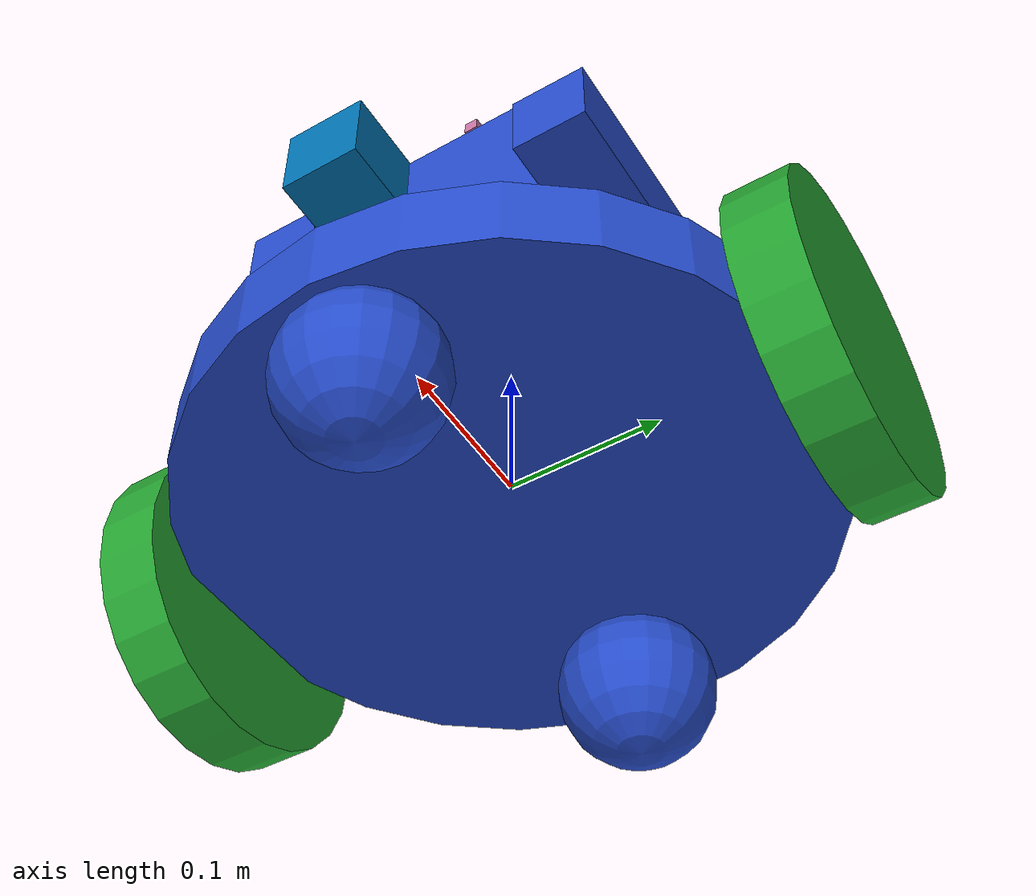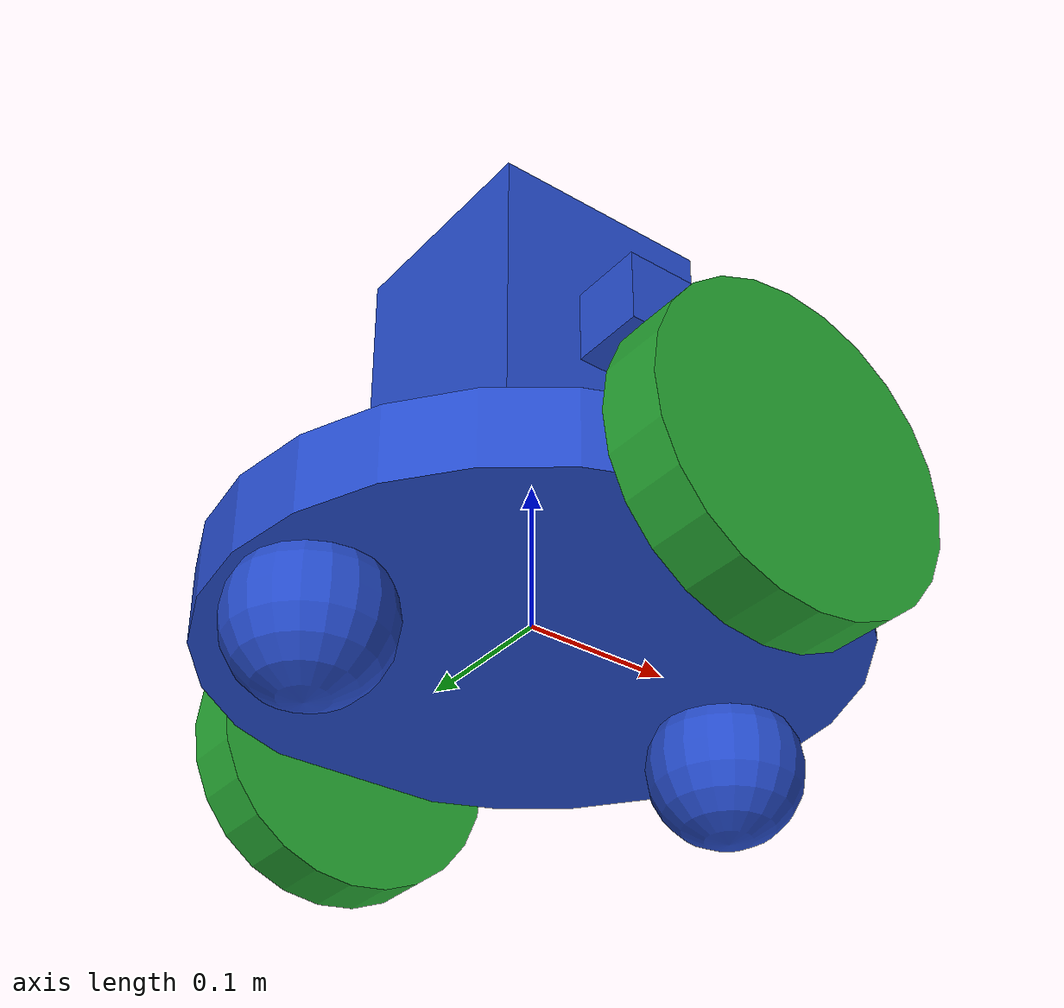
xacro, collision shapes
<?xml version='1.0'?>

<robot name="explo_bot" xmlns:xacro="http://www.ros.org/wiki/xacro">

  <xacro:include filename="$(find slam_project)/urdf/explo_bot.gazebo" />

  <link name="robot_footprint"></link>

  <joint name="robot_footprint_joint" type="fixed">
    <origin xyz="0 0 0" rpy="0 0 0" />
    <parent link="robot_footprint"/>
    <child link="chassis" />
  </joint>

  <link name='chassis'>
    <pose>0 0 0.1 0 0 0</pose>

    <inertial>
      <mass value="15.0"/>
      <origin xyz="0.0 0 0" rpy=" 0 0 0"/>
      <inertia
          ixx="0.1" ixy="0" ixz="0"
          iyy="0.1" iyz="0"
          izz="0.1"
      />
    </inertial>

    <collision name='collision'>
      <origin xyz="0 0 0" rpy=" 0 0 0"/>
      <geometry>
        <cylinder radius="0.2" length="0.05"/>
      </geometry>
    </collision>

    <visual name='chassis_visual'>
      <origin xyz="0 0 0" rpy=" 0 0 0"/>
      <geometry>
        <cylinder radius="0.2" length="0.1"/>
      </geometry>
    </visual>

    <collision name='center_box'>
      <origin xyz="0 0 0.175" rpy=" 0 0 0"/>
      <geometry>
        <box size="0.15 0.15 0.2"/>
      </geometry>
    </collision>

    <visual name='center_box_visual'>
      <origin xyz="0 0 0.175" rpy=" 0 0 0"/>
      <geometry>
        <box size="0.15 0.15 0.2"/>
      </geometry>
    </visual>

    <collision name='left_arm'>
      <origin xyz="0.05 0.1 0.17" rpy=" 0 0 0"/>
      <geometry>
        <box size="0.14 0.05 0.05"/>
      </geometry>
    </collision>

    <visual name='left_arm_visual'>
      <origin xyz="0.05 0.1 0.17" rpy=" 0 0 0"/>
      <geometry>
        <box size="0.14 0.05 0.05"/>
      </geometry>
    </visual>

    <collision name='right_arm'>
      <origin xyz="0.05 -0.1 0.17" rpy=" 0 0 0"/>
      <geometry>
        <box size="0.14 0.05 0.05"/>
      </geometry>
    </collision>

    <visual name='right_arm_visual'>
      <origin xyz="0.05 -0.1 0.17" rpy=" 0 0 0"/>
      <geometry>
        <box size="0.14 0.05 0.05"/>
      </geometry>
    </visual>

    <collision name='back_caster_collision'>
      <origin xyz="-0.15 0 -0.05" rpy=" 0 0 0"/>
      <geometry>
        <sphere radius="0.0499"/>
      </geometry>
    </collision>

    <visual name='back_caster_visual'>
      <origin xyz="-0.15 0 -0.05" rpy=" 0 0 0"/>
      <geometry>
        <sphere radius="0.05"/>
      </geometry>
    </visual>

    <collision name='front_caster_collision'>
      <origin xyz="0.15 0 -0.05" rpy=" 0 0 0"/>
      <geometry>
        <sphere radius="0.0499"/>
      </geometry>
    </collision>

    <visual name='front_caster_visual'>
      <origin xyz="0.15 0 -0.05" rpy=" 0 0 0"/>
      <geometry>
        <sphere radius="0.05"/>
      </geometry>
    </visual>

  </link>

  <link name='right_wheel'>
	  <pose>0 0 0.1 0 0 0</pose>
	  <inertial>
	      <mass value="5.0"/>
	      <origin xyz="0 0 0" rpy="0 1.5707 1.5707 "/>
	      <inertia
		  ixx="0.1" ixy="0" ixz="0"
		  iyy="0.1" iyz="0"
		  izz="0.1"
	      />
	    </inertial>

	    <collision name='right_wheel_collision'>
	      <origin xyz="0 0 0" rpy=" 0 1.5707 1.5707"/>
	      <geometry>
		<cylinder radius="0.1" length="0.04"/>
	      </geometry>
	    </collision>

	    <visual name='right_wheel_visual'>
	      <origin xyz="0 0 0" rpy=" 0 1.5707 1.5707"/>
	      <geometry>
		<cylinder radius="0.1" length="0.04"/>
	      </geometry>
	    </visual>
  </link>

  <link name='left_wheel'>
	  <pose>0 0 0.1 0 0 0</pose>
	  <inertial>
	      <mass value="5.0"/>
	      <origin xyz="0 0 0" rpy="0 1.5707 1.5707"/>
	      <inertia
		  ixx="0.1" ixy="0" ixz="0"
		  iyy="0.1" iyz="0"
		  izz="0.1"
	      />
	    </inertial>
	    <collision name='left_wheel_collision'>
	      <origin xyz="0 0 0" rpy=" 0 1.5707 1.5707"/>
	      <geometry>
		<cylinder radius="0.1" length="0.04"/>
	      </geometry>
	    </collision>

	    <visual name='left_wheel_visual'>
	      <origin xyz="0 0 0" rpy=" 0 1.5707 1.5707"/>
	      <geometry>
		<cylinder radius="0.1" length="0.04"/>
	      </geometry>
	    </visual>
  </link>

  <joint type="continuous" name="left_wheel_hinge">
	    <origin xyz="0 0.21 0" rpy="0 0 0"/>
	    <child link="left_wheel"/>
	    <parent link="chassis"/>
	    <axis xyz="0 1 0" rpy="0 0 0"/>
	    <limit effort="10000" velocity="1000"/>
	    <dynamics damping="1.0" friction="1.0"/>
  </joint>

  <joint type="continuous" name="right_wheel_hinge">
	    <origin xyz="0 -0.21 0" rpy="0 0 0"/>
	    <child link="right_wheel"/>
	    <parent link="chassis"/>
	    <axis xyz="0 1 0" rpy="0 0 0"/>
	    <limit effort="10000" velocity="1000"/>
	    <dynamics damping="1.0" friction="1.0"/>
  </joint>

  <link name='camera'>
	  <pose>0 0 0.1 0 0 0</pose>
	  <inertial>
	      <mass value="0.1"/>
	      <origin xyz="0 0 0" rpy="0 0 0"/>
	      <inertia
		  ixx="1e-6" ixy="0" ixz="0"
		  iyy="1e-6" iyz="0"
		  izz="1e-6"
	      />
	    </inertial>
	    <collision name='camera_collision'>
	      <origin xyz="0 0 0" rpy=" 0 0 0"/>
	      <geometry>
		<box size="0.05 0.05 0.05"/>
	      </geometry>
	    </collision>

	    <visual name='camera_visual'>
	      <origin xyz="0 0 0" rpy=" 0 0 0"/>
	      <geometry>
		<mesh filename="$(find slam_project)/meshes/kinect.dae"/>
	      </geometry>
	    </visual>
  </link>

  <joint type="fixed" name="camera_joint2">
	    <origin xyz="0.18 0 0.1" rpy="0 0 0"/>
	    <child link="camera"/>
	    <parent link="chassis"/>
  </joint>

  <joint name="camera_joint" type="fixed">
      <origin xyz="0.18 0 0.1" rpy="-1.5707 0 -1.5707"/>
      <parent link="camera"/>
      <child link="camera_rgbd_frame"/>
  </joint>

 <link name="camera_rgbd_frame"> </link>

  <link name='hokuyo'>
	  <pose>0 0 0.1 0 0 0</pose>
	  <inertial>
	      <mass value="0.1"/>
	      <origin xyz="0 0 0" rpy="0 0 0"/>
	      <inertia
		  ixx="1e-6" ixy="0" ixz="0"
		  iyy="1e-6" iyz="0"
		  izz="1e-6"
	      />
	    </inertial>
	    <collision name='hokuyo_collision'>
	      <origin xyz="0 0 0" rpy=" 0 0 0"/>
	      <geometry>
		<box size="0.01 0.01 0.01"/>
	      </geometry>
	    </collision>

	    <visual name='hokuyo_visual'>
	      <origin xyz="0 0 0" rpy=" 0 0 0"/>
	      <geometry>
		<mesh filename="$(find slam_project)/meshes/hokuyo.dae"/>
	      </geometry>
	    </visual>
  </link>

  <joint type="fixed" name="hokuyo_joint">
	    <origin xyz="0.05 0 0.32" rpy="0 0 0"/>
	    <child link="hokuyo"/>
	    <parent link="chassis"/>
  </joint>

</robot>
